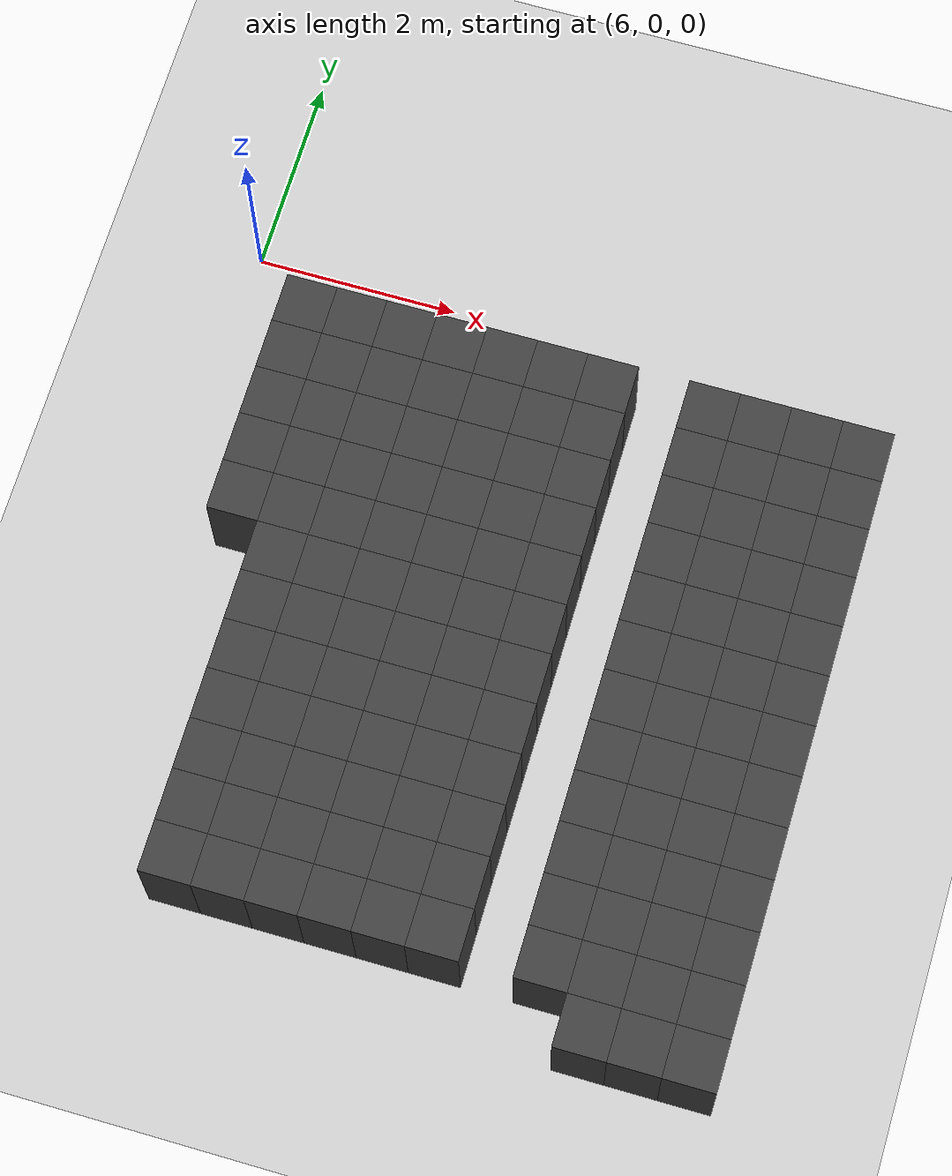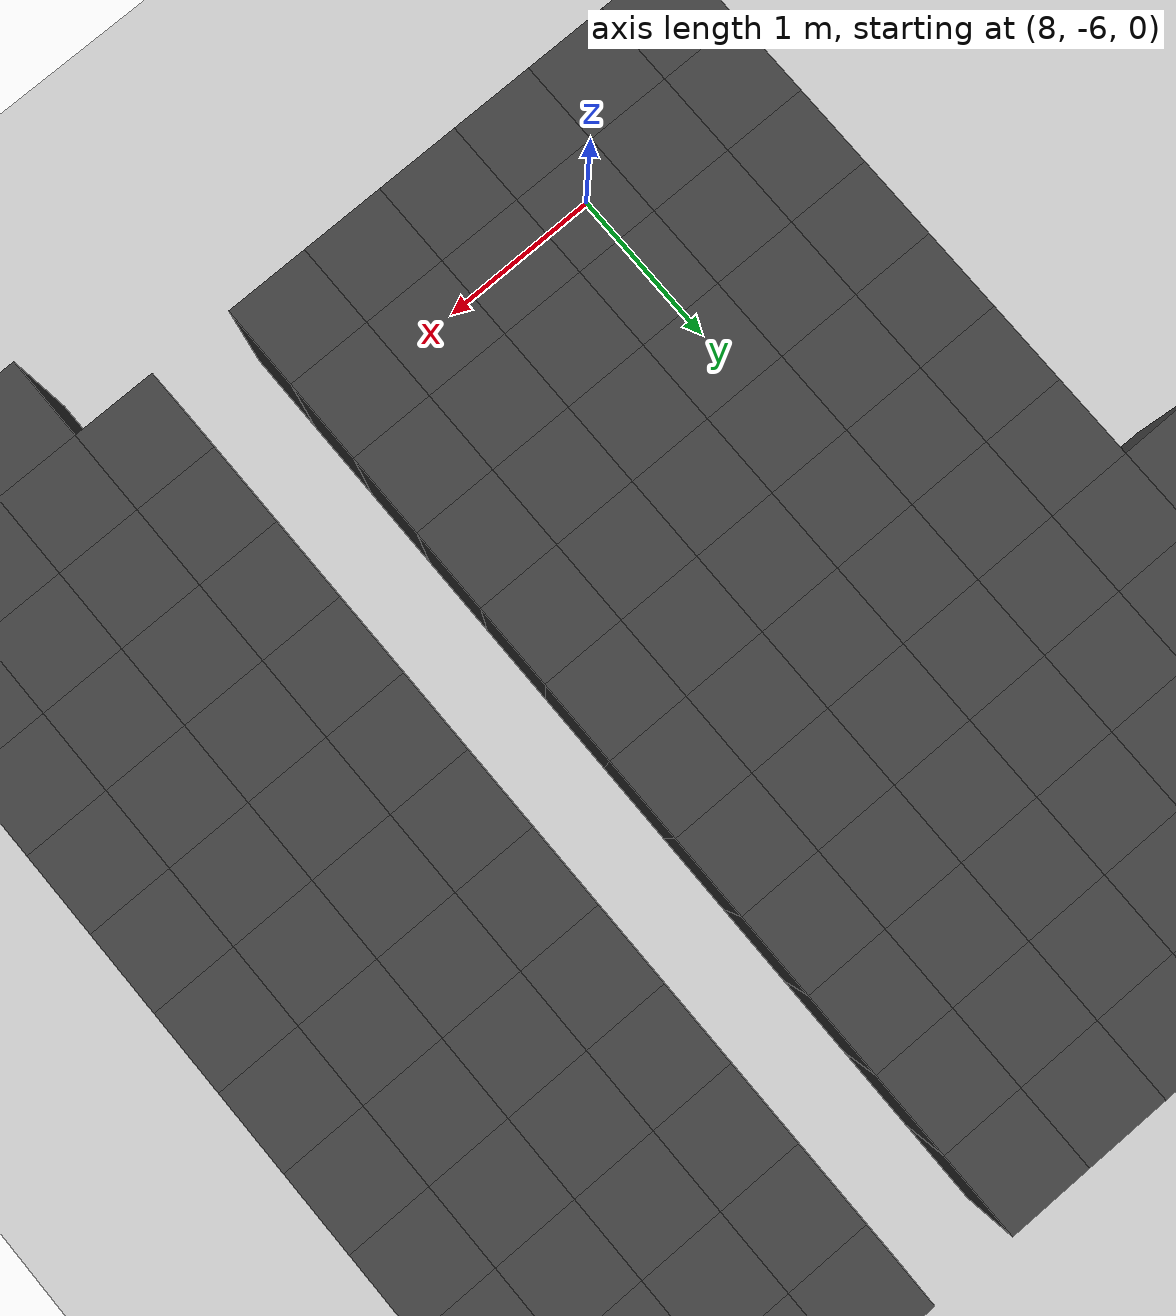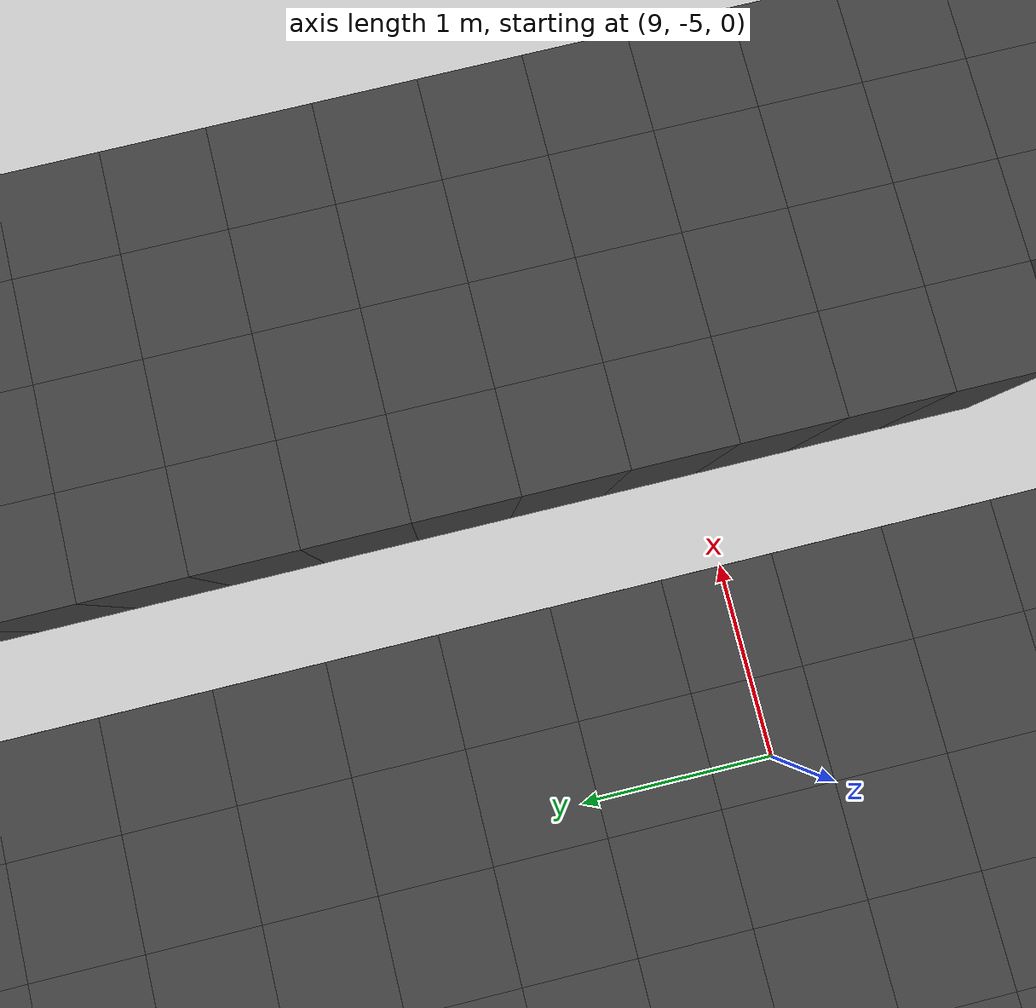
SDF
<sdf version="1.7">
 <world name="map_12356">
  <model name="ground_plane">
   <static>true</static>
   <link name="link">
    <collision name="collision">
     <geometry><plane><normal>0 0 1</normal><size>200 200</size></plane></geometry>
    </collision>
    <visual name="visual">
     <geometry><plane><normal>0 0 1</normal><size>200 200</size></plane></geometry>
     <material><ambient>0.8 0.8 0.8 1</ambient><diffuse>0.8 0.8 0.8 1</diffuse></material>
    </visual>
   </link>
  </model>
  <model name="maze_environment">
   <static>true</static>
   <link name="wall_1046">
    <pose>6.750 -0.750 0.500 0 0 0</pose>
    <collision name="col"><geometry><box><size>0.5 0.5 1.0</size></box></geometry></collision>
    <visual name="vis">
     <geometry><box><size>0.5 0.5 1.0</size></box></geometry>
     <material><ambient>0.15 0.15 0.15 1</ambient><diffuse>0.25 0.25 0.25 1</diffuse></material>
    </visual>
   </link>
   <link name="wall_1047">
    <pose>7.250 -0.750 0.500 0 0 0</pose>
    <collision name="col"><geometry><box><size>0.5 0.5 1.0</size></box></geometry></collision>
    <visual name="vis">
     <geometry><box><size>0.5 0.5 1.0</size></box></geometry>
     <material><ambient>0.15 0.15 0.15 1</ambient><diffuse>0.25 0.25 0.25 1</diffuse></material>
    </visual>
   </link>
   <link name="wall_1048">
    <pose>7.750 -0.750 0.500 0 0 0</pose>
    <collision name="col"><geometry><box><size>0.5 0.5 1.0</size></box></geometry></collision>
    <visual name="vis">
     <geometry><box><size>0.5 0.5 1.0</size></box></geometry>
     <material><ambient>0.15 0.15 0.15 1</ambient><diffuse>0.25 0.25 0.25 1</diffuse></material>
    </visual>
   </link>
   <link name="wall_1049">
    <pose>8.250 -0.750 0.500 0 0 0</pose>
    <collision name="col"><geometry><box><size>0.5 0.5 1.0</size></box></geometry></collision>
    <visual name="vis">
     <geometry><box><size>0.5 0.5 1.0</size></box></geometry>
     <material><ambient>0.15 0.15 0.15 1</ambient><diffuse>0.25 0.25 0.25 1</diffuse></material>
    </visual>
   </link>
   <link name="wall_1050">
    <pose>8.750 -0.750 0.500 0 0 0</pose>
    <collision name="col"><geometry><box><size>0.5 0.5 1.0</size></box></geometry></collision>
    <visual name="vis">
     <geometry><box><size>0.5 0.5 1.0</size></box></geometry>
     <material><ambient>0.15 0.15 0.15 1</ambient><diffuse>0.25 0.25 0.25 1</diffuse></material>
    </visual>
   </link>
   <link name="wall_1051">
    <pose>9.250 -0.750 0.500 0 0 0</pose>
    <collision name="col"><geometry><box><size>0.5 0.5 1.0</size></box></geometry></collision>
    <visual name="vis">
     <geometry><box><size>0.5 0.5 1.0</size></box></geometry>
     <material><ambient>0.15 0.15 0.15 1</ambient><diffuse>0.25 0.25 0.25 1</diffuse></material>
    </visual>
   </link>
   <link name="wall_1052">
    <pose>9.750 -0.750 0.500 0 0 0</pose>
    <collision name="col"><geometry><box><size>0.5 0.5 1.0</size></box></geometry></collision>
    <visual name="vis">
     <geometry><box><size>0.5 0.5 1.0</size></box></geometry>
     <material><ambient>0.15 0.15 0.15 1</ambient><diffuse>0.25 0.25 0.25 1</diffuse></material>
    </visual>
   </link>
   <link name="wall_1053">
    <pose>10.750 -0.750 0.500 0 0 0</pose>
    <collision name="col"><geometry><box><size>0.5 0.5 1.0</size></box></geometry></collision>
    <visual name="vis">
     <geometry><box><size>0.5 0.5 1.0</size></box></geometry>
     <material><ambient>0.15 0.15 0.15 1</ambient><diffuse>0.25 0.25 0.25 1</diffuse></material>
    </visual>
   </link>
   <link name="wall_1054">
    <pose>11.250 -0.750 0.500 0 0 0</pose>
    <collision name="col"><geometry><box><size>0.5 0.5 1.0</size></box></geometry></collision>
    <visual name="vis">
     <geometry><box><size>0.5 0.5 1.0</size></box></geometry>
     <material><ambient>0.15 0.15 0.15 1</ambient><diffuse>0.25 0.25 0.25 1</diffuse></material>
    </visual>
   </link>
   <link name="wall_1055">
    <pose>11.750 -0.750 0.500 0 0 0</pose>
    <collision name="col"><geometry><box><size>0.5 0.5 1.0</size></box></geometry></collision>
    <visual name="vis">
     <geometry><box><size>0.5 0.5 1.0</size></box></geometry>
     <material><ambient>0.15 0.15 0.15 1</ambient><diffuse>0.25 0.25 0.25 1</diffuse></material>
    </visual>
   </link>
   <link name="wall_1056">
    <pose>12.250 -0.750 0.500 0 0 0</pose>
    <collision name="col"><geometry><box><size>0.5 0.5 1.0</size></box></geometry></collision>
    <visual name="vis">
     <geometry><box><size>0.5 0.5 1.0</size></box></geometry>
     <material><ambient>0.15 0.15 0.15 1</ambient><diffuse>0.25 0.25 0.25 1</diffuse></material>
    </visual>
   </link>
   <link name="wall_1090">
    <pose>6.750 -1.250 0.500 0 0 0</pose>
    <collision name="col"><geometry><box><size>0.5 0.5 1.0</size></box></geometry></collision>
    <visual name="vis">
     <geometry><box><size>0.5 0.5 1.0</size></box></geometry>
     <material><ambient>0.15 0.15 0.15 1</ambient><diffuse>0.25 0.25 0.25 1</diffuse></material>
    </visual>
   </link>
   <link name="wall_1091">
    <pose>7.250 -1.250 0.500 0 0 0</pose>
    <collision name="col"><geometry><box><size>0.5 0.5 1.0</size></box></geometry></collision>
    <visual name="vis">
     <geometry><box><size>0.5 0.5 1.0</size></box></geometry>
     <material><ambient>0.15 0.15 0.15 1</ambient><diffuse>0.25 0.25 0.25 1</diffuse></material>
    </visual>
   </link>
   <link name="wall_1092">
    <pose>7.750 -1.250 0.500 0 0 0</pose>
    <collision name="col"><geometry><box><size>0.5 0.5 1.0</size></box></geometry></collision>
    <visual name="vis">
     <geometry><box><size>0.5 0.5 1.0</size></box></geometry>
     <material><ambient>0.15 0.15 0.15 1</ambient><diffuse>0.25 0.25 0.25 1</diffuse></material>
    </visual>
   </link>
   <link name="wall_1093">
    <pose>8.250 -1.250 0.500 0 0 0</pose>
    <collision name="col"><geometry><box><size>0.5 0.5 1.0</size></box></geometry></collision>
    <visual name="vis">
     <geometry><box><size>0.5 0.5 1.0</size></box></geometry>
     <material><ambient>0.15 0.15 0.15 1</ambient><diffuse>0.25 0.25 0.25 1</diffuse></material>
    </visual>
   </link>
   <link name="wall_1094">
    <pose>8.750 -1.250 0.500 0 0 0</pose>
    <collision name="col"><geometry><box><size>0.5 0.5 1.0</size></box></geometry></collision>
    <visual name="vis">
     <geometry><box><size>0.5 0.5 1.0</size></box></geometry>
     <material><ambient>0.15 0.15 0.15 1</ambient><diffuse>0.25 0.25 0.25 1</diffuse></material>
    </visual>
   </link>
   <link name="wall_1095">
    <pose>9.250 -1.250 0.500 0 0 0</pose>
    <collision name="col"><geometry><box><size>0.5 0.5 1.0</size></box></geometry></collision>
    <visual name="vis">
     <geometry><box><size>0.5 0.5 1.0</size></box></geometry>
     <material><ambient>0.15 0.15 0.15 1</ambient><diffuse>0.25 0.25 0.25 1</diffuse></material>
    </visual>
   </link>
   <link name="wall_1096">
    <pose>9.750 -1.250 0.500 0 0 0</pose>
    <collision name="col"><geometry><box><size>0.5 0.5 1.0</size></box></geometry></collision>
    <visual name="vis">
     <geometry><box><size>0.5 0.5 1.0</size></box></geometry>
     <material><ambient>0.15 0.15 0.15 1</ambient><diffuse>0.25 0.25 0.25 1</diffuse></material>
    </visual>
   </link>
   <link name="wall_1097">
    <pose>10.750 -1.250 0.500 0 0 0</pose>
    <collision name="col"><geometry><box><size>0.5 0.5 1.0</size></box></geometry></collision>
    <visual name="vis">
     <geometry><box><size>0.5 0.5 1.0</size></box></geometry>
     <material><ambient>0.15 0.15 0.15 1</ambient><diffuse>0.25 0.25 0.25 1</diffuse></material>
    </visual>
   </link>
   <link name="wall_1098">
    <pose>11.250 -1.250 0.500 0 0 0</pose>
    <collision name="col"><geometry><box><size>0.5 0.5 1.0</size></box></geometry></collision>
    <visual name="vis">
     <geometry><box><size>0.5 0.5 1.0</size></box></geometry>
     <material><ambient>0.15 0.15 0.15 1</ambient><diffuse>0.25 0.25 0.25 1</diffuse></material>
    </visual>
   </link>
   <link name="wall_1099">
    <pose>11.750 -1.250 0.500 0 0 0</pose>
    <collision name="col"><geometry><box><size>0.5 0.5 1.0</size></box></geometry></collision>
    <visual name="vis">
     <geometry><box><size>0.5 0.5 1.0</size></box></geometry>
     <material><ambient>0.15 0.15 0.15 1</ambient><diffuse>0.25 0.25 0.25 1</diffuse></material>
    </visual>
   </link>
   <link name="wall_1100">
    <pose>12.250 -1.250 0.500 0 0 0</pose>
    <collision name="col"><geometry><box><size>0.5 0.5 1.0</size></box></geometry></collision>
    <visual name="vis">
     <geometry><box><size>0.5 0.5 1.0</size></box></geometry>
     <material><ambient>0.15 0.15 0.15 1</ambient><diffuse>0.25 0.25 0.25 1</diffuse></material>
    </visual>
   </link>
   <link name="wall_1132">
    <pose>6.750 -1.750 0.500 0 0 0</pose>
    <collision name="col"><geometry><box><size>0.5 0.5 1.0</size></box></geometry></collision>
    <visual name="vis">
     <geometry><box><size>0.5 0.5 1.0</size></box></geometry>
     <material><ambient>0.15 0.15 0.15 1</ambient><diffuse>0.25 0.25 0.25 1</diffuse></material>
    </visual>
   </link>
   <link name="wall_1133">
    <pose>7.250 -1.750 0.500 0 0 0</pose>
    <collision name="col"><geometry><box><size>0.5 0.5 1.0</size></box></geometry></collision>
    <visual name="vis">
     <geometry><box><size>0.5 0.5 1.0</size></box></geometry>
     <material><ambient>0.15 0.15 0.15 1</ambient><diffuse>0.25 0.25 0.25 1</diffuse></material>
    </visual>
   </link>
   <link name="wall_1134">
    <pose>7.750 -1.750 0.500 0 0 0</pose>
    <collision name="col"><geometry><box><size>0.5 0.5 1.0</size></box></geometry></collision>
    <visual name="vis">
     <geometry><box><size>0.5 0.5 1.0</size></box></geometry>
     <material><ambient>0.15 0.15 0.15 1</ambient><diffuse>0.25 0.25 0.25 1</diffuse></material>
    </visual>
   </link>
   <link name="wall_1135">
    <pose>8.250 -1.750 0.500 0 0 0</pose>
    <collision name="col"><geometry><box><size>0.5 0.5 1.0</size></box></geometry></collision>
    <visual name="vis">
     <geometry><box><size>0.5 0.5 1.0</size></box></geometry>
     <material><ambient>0.15 0.15 0.15 1</ambient><diffuse>0.25 0.25 0.25 1</diffuse></material>
    </visual>
   </link>
   <link name="wall_1136">
    <pose>8.750 -1.750 0.500 0 0 0</pose>
    <collision name="col"><geometry><box><size>0.5 0.5 1.0</size></box></geometry></collision>
    <visual name="vis">
     <geometry><box><size>0.5 0.5 1.0</size></box></geometry>
     <material><ambient>0.15 0.15 0.15 1</ambient><diffuse>0.25 0.25 0.25 1</diffuse></material>
    </visual>
   </link>
   <link name="wall_1137">
    <pose>9.250 -1.750 0.500 0 0 0</pose>
    <collision name="col"><geometry><box><size>0.5 0.5 1.0</size></box></geometry></collision>
    <visual name="vis">
     <geometry><box><size>0.5 0.5 1.0</size></box></geometry>
     <material><ambient>0.15 0.15 0.15 1</ambient><diffuse>0.25 0.25 0.25 1</diffuse></material>
    </visual>
   </link>
   <link name="wall_1138">
    <pose>9.750 -1.750 0.500 0 0 0</pose>
    <collision name="col"><geometry><box><size>0.5 0.5 1.0</size></box></geometry></collision>
    <visual name="vis">
     <geometry><box><size>0.5 0.5 1.0</size></box></geometry>
     <material><ambient>0.15 0.15 0.15 1</ambient><diffuse>0.25 0.25 0.25 1</diffuse></material>
    </visual>
   </link>
   <link name="wall_1139">
    <pose>10.750 -1.750 0.500 0 0 0</pose>
    <collision name="col"><geometry><box><size>0.5 0.5 1.0</size></box></geometry></collision>
    <visual name="vis">
     <geometry><box><size>0.5 0.5 1.0</size></box></geometry>
     <material><ambient>0.15 0.15 0.15 1</ambient><diffuse>0.25 0.25 0.25 1</diffuse></material>
    </visual>
   </link>
   <link name="wall_1140">
    <pose>11.250 -1.750 0.500 0 0 0</pose>
    <collision name="col"><geometry><box><size>0.5 0.5 1.0</size></box></geometry></collision>
    <visual name="vis">
     <geometry><box><size>0.5 0.5 1.0</size></box></geometry>
     <material><ambient>0.15 0.15 0.15 1</ambient><diffuse>0.25 0.25 0.25 1</diffuse></material>
    </visual>
   </link>
   <link name="wall_1141">
    <pose>11.750 -1.750 0.500 0 0 0</pose>
    <collision name="col"><geometry><box><size>0.5 0.5 1.0</size></box></geometry></collision>
    <visual name="vis">
     <geometry><box><size>0.5 0.5 1.0</size></box></geometry>
     <material><ambient>0.15 0.15 0.15 1</ambient><diffuse>0.25 0.25 0.25 1</diffuse></material>
    </visual>
   </link>
   <link name="wall_1142">
    <pose>12.250 -1.750 0.500 0 0 0</pose>
    <collision name="col"><geometry><box><size>0.5 0.5 1.0</size></box></geometry></collision>
    <visual name="vis">
     <geometry><box><size>0.5 0.5 1.0</size></box></geometry>
     <material><ambient>0.15 0.15 0.15 1</ambient><diffuse>0.25 0.25 0.25 1</diffuse></material>
    </visual>
   </link>
   <link name="wall_1170">
    <pose>6.750 -2.250 0.500 0 0 0</pose>
    <collision name="col"><geometry><box><size>0.5 0.5 1.0</size></box></geometry></collision>
    <visual name="vis">
     <geometry><box><size>0.5 0.5 1.0</size></box></geometry>
     <material><ambient>0.15 0.15 0.15 1</ambient><diffuse>0.25 0.25 0.25 1</diffuse></material>
    </visual>
   </link>
   <link name="wall_1171">
    <pose>7.250 -2.250 0.500 0 0 0</pose>
    <collision name="col"><geometry><box><size>0.5 0.5 1.0</size></box></geometry></collision>
    <visual name="vis">
     <geometry><box><size>0.5 0.5 1.0</size></box></geometry>
     <material><ambient>0.15 0.15 0.15 1</ambient><diffuse>0.25 0.25 0.25 1</diffuse></material>
    </visual>
   </link>
   <link name="wall_1172">
    <pose>7.750 -2.250 0.500 0 0 0</pose>
    <collision name="col"><geometry><box><size>0.5 0.5 1.0</size></box></geometry></collision>
    <visual name="vis">
     <geometry><box><size>0.5 0.5 1.0</size></box></geometry>
     <material><ambient>0.15 0.15 0.15 1</ambient><diffuse>0.25 0.25 0.25 1</diffuse></material>
    </visual>
   </link>
   <link name="wall_1173">
    <pose>8.250 -2.250 0.500 0 0 0</pose>
    <collision name="col"><geometry><box><size>0.5 0.5 1.0</size></box></geometry></collision>
    <visual name="vis">
     <geometry><box><size>0.5 0.5 1.0</size></box></geometry>
     <material><ambient>0.15 0.15 0.15 1</ambient><diffuse>0.25 0.25 0.25 1</diffuse></material>
    </visual>
   </link>
   <link name="wall_1174">
    <pose>8.750 -2.250 0.500 0 0 0</pose>
    <collision name="col"><geometry><box><size>0.5 0.5 1.0</size></box></geometry></collision>
    <visual name="vis">
     <geometry><box><size>0.5 0.5 1.0</size></box></geometry>
     <material><ambient>0.15 0.15 0.15 1</ambient><diffuse>0.25 0.25 0.25 1</diffuse></material>
    </visual>
   </link>
   <link name="wall_1175">
    <pose>9.250 -2.250 0.500 0 0 0</pose>
    <collision name="col"><geometry><box><size>0.5 0.5 1.0</size></box></geometry></collision>
    <visual name="vis">
     <geometry><box><size>0.5 0.5 1.0</size></box></geometry>
     <material><ambient>0.15 0.15 0.15 1</ambient><diffuse>0.25 0.25 0.25 1</diffuse></material>
    </visual>
   </link>
   <link name="wall_1176">
    <pose>9.750 -2.250 0.500 0 0 0</pose>
    <collision name="col"><geometry><box><size>0.5 0.5 1.0</size></box></geometry></collision>
    <visual name="vis">
     <geometry><box><size>0.5 0.5 1.0</size></box></geometry>
     <material><ambient>0.15 0.15 0.15 1</ambient><diffuse>0.25 0.25 0.25 1</diffuse></material>
    </visual>
   </link>
   <link name="wall_1177">
    <pose>10.750 -2.250 0.500 0 0 0</pose>
    <collision name="col"><geometry><box><size>0.5 0.5 1.0</size></box></geometry></collision>
    <visual name="vis">
     <geometry><box><size>0.5 0.5 1.0</size></box></geometry>
     <material><ambient>0.15 0.15 0.15 1</ambient><diffuse>0.25 0.25 0.25 1</diffuse></material>
    </visual>
   </link>
   <link name="wall_1178">
    <pose>11.250 -2.250 0.500 0 0 0</pose>
    <collision name="col"><geometry><box><size>0.5 0.5 1.0</size></box></geometry></collision>
    <visual name="vis">
     <geometry><box><size>0.5 0.5 1.0</size></box></geometry>
     <material><ambient>0.15 0.15 0.15 1</ambient><diffuse>0.25 0.25 0.25 1</diffuse></material>
    </visual>
   </link>
   <link name="wall_1179">
    <pose>11.750 -2.250 0.500 0 0 0</pose>
    <collision name="col"><geometry><box><size>0.5 0.5 1.0</size></box></geometry></collision>
    <visual name="vis">
     <geometry><box><size>0.5 0.5 1.0</size></box></geometry>
     <material><ambient>0.15 0.15 0.15 1</ambient><diffuse>0.25 0.25 0.25 1</diffuse></material>
    </visual>
   </link>
   <link name="wall_1180">
    <pose>12.250 -2.250 0.500 0 0 0</pose>
    <collision name="col"><geometry><box><size>0.5 0.5 1.0</size></box></geometry></collision>
    <visual name="vis">
     <geometry><box><size>0.5 0.5 1.0</size></box></geometry>
     <material><ambient>0.15 0.15 0.15 1</ambient><diffuse>0.25 0.25 0.25 1</diffuse></material>
    </visual>
   </link>
   <link name="wall_1211">
    <pose>6.750 -2.750 0.500 0 0 0</pose>
    <collision name="col"><geometry><box><size>0.5 0.5 1.0</size></box></geometry></collision>
    <visual name="vis">
     <geometry><box><size>0.5 0.5 1.0</size></box></geometry>
     <material><ambient>0.15 0.15 0.15 1</ambient><diffuse>0.25 0.25 0.25 1</diffuse></material>
    </visual>
   </link>
   <link name="wall_1212">
    <pose>7.250 -2.750 0.500 0 0 0</pose>
    <collision name="col"><geometry><box><size>0.5 0.5 1.0</size></box></geometry></collision>
    <visual name="vis">
     <geometry><box><size>0.5 0.5 1.0</size></box></geometry>
     <material><ambient>0.15 0.15 0.15 1</ambient><diffuse>0.25 0.25 0.25 1</diffuse></material>
    </visual>
   </link>
   <link name="wall_1213">
    <pose>7.750 -2.750 0.500 0 0 0</pose>
    <collision name="col"><geometry><box><size>0.5 0.5 1.0</size></box></geometry></collision>
    <visual name="vis">
     <geometry><box><size>0.5 0.5 1.0</size></box></geometry>
     <material><ambient>0.15 0.15 0.15 1</ambient><diffuse>0.25 0.25 0.25 1</diffuse></material>
    </visual>
   </link>
   <link name="wall_1214">
    <pose>8.250 -2.750 0.500 0 0 0</pose>
    <collision name="col"><geometry><box><size>0.5 0.5 1.0</size></box></geometry></collision>
    <visual name="vis">
     <geometry><box><size>0.5 0.5 1.0</size></box></geometry>
     <material><ambient>0.15 0.15 0.15 1</ambient><diffuse>0.25 0.25 0.25 1</diffuse></material>
    </visual>
   </link>
   <link name="wall_1215">
    <pose>8.750 -2.750 0.500 0 0 0</pose>
    <collision name="col"><geometry><box><size>0.5 0.5 1.0</size></box></geometry></collision>
    <visual name="vis">
     <geometry><box><size>0.5 0.5 1.0</size></box></geometry>
     <material><ambient>0.15 0.15 0.15 1</ambient><diffuse>0.25 0.25 0.25 1</diffuse></material>
    </visual>
   </link>
   <link name="wall_1216">
    <pose>9.250 -2.750 0.500 0 0 0</pose>
    <collision name="col"><geometry><box><size>0.5 0.5 1.0</size></box></geometry></collision>
    <visual name="vis">
     <geometry><box><size>0.5 0.5 1.0</size></box></geometry>
     <material><ambient>0.15 0.15 0.15 1</ambient><diffuse>0.25 0.25 0.25 1</diffuse></material>
    </visual>
   </link>
   <link name="wall_1217">
    <pose>9.750 -2.750 0.500 0 0 0</pose>
    <collision name="col"><geometry><box><size>0.5 0.5 1.0</size></box></geometry></collision>
    <visual name="vis">
     <geometry><box><size>0.5 0.5 1.0</size></box></geometry>
     <material><ambient>0.15 0.15 0.15 1</ambient><diffuse>0.25 0.25 0.25 1</diffuse></material>
    </visual>
   </link>
   <link name="wall_1218">
    <pose>10.750 -2.750 0.500 0 0 0</pose>
    <collision name="col"><geometry><box><size>0.5 0.5 1.0</size></box></geometry></collision>
    <visual name="vis">
     <geometry><box><size>0.5 0.5 1.0</size></box></geometry>
     <material><ambient>0.15 0.15 0.15 1</ambient><diffuse>0.25 0.25 0.25 1</diffuse></material>
    </visual>
   </link>
   <link name="wall_1219">
    <pose>11.250 -2.750 0.500 0 0 0</pose>
    <collision name="col"><geometry><box><size>0.5 0.5 1.0</size></box></geometry></collision>
    <visual name="vis">
     <geometry><box><size>0.5 0.5 1.0</size></box></geometry>
     <material><ambient>0.15 0.15 0.15 1</ambient><diffuse>0.25 0.25 0.25 1</diffuse></material>
    </visual>
   </link>
   <link name="wall_1220">
    <pose>11.750 -2.750 0.500 0 0 0</pose>
    <collision name="col"><geometry><box><size>0.5 0.5 1.0</size></box></geometry></collision>
    <visual name="vis">
     <geometry><box><size>0.5 0.5 1.0</size></box></geometry>
     <material><ambient>0.15 0.15 0.15 1</ambient><diffuse>0.25 0.25 0.25 1</diffuse></material>
    </visual>
   </link>
   <link name="wall_1221">
    <pose>12.250 -2.750 0.500 0 0 0</pose>
    <collision name="col"><geometry><box><size>0.5 0.5 1.0</size></box></geometry></collision>
    <visual name="vis">
     <geometry><box><size>0.5 0.5 1.0</size></box></geometry>
     <material><ambient>0.15 0.15 0.15 1</ambient><diffuse>0.25 0.25 0.25 1</diffuse></material>
    </visual>
   </link>
   <link name="wall_1253">
    <pose>7.250 -3.250 0.500 0 0 0</pose>
    <collision name="col"><geometry><box><size>0.5 0.5 1.0</size></box></geometry></collision>
    <visual name="vis">
     <geometry><box><size>0.5 0.5 1.0</size></box></geometry>
     <material><ambient>0.15 0.15 0.15 1</ambient><diffuse>0.25 0.25 0.25 1</diffuse></material>
    </visual>
   </link>
   <link name="wall_1254">
    <pose>7.750 -3.250 0.500 0 0 0</pose>
    <collision name="col"><geometry><box><size>0.5 0.5 1.0</size></box></geometry></collision>
    <visual name="vis">
     <geometry><box><size>0.5 0.5 1.0</size></box></geometry>
     <material><ambient>0.15 0.15 0.15 1</ambient><diffuse>0.25 0.25 0.25 1</diffuse></material>
    </visual>
   </link>
   <link name="wall_1255">
    <pose>8.250 -3.250 0.500 0 0 0</pose>
    <collision name="col"><geometry><box><size>0.5 0.5 1.0</size></box></geometry></collision>
    <visual name="vis">
     <geometry><box><size>0.5 0.5 1.0</size></box></geometry>
     <material><ambient>0.15 0.15 0.15 1</ambient><diffuse>0.25 0.25 0.25 1</diffuse></material>
    </visual>
   </link>
   <link name="wall_1256">
    <pose>8.750 -3.250 0.500 0 0 0</pose>
    <collision name="col"><geometry><box><size>0.5 0.5 1.0</size></box></geometry></collision>
    <visual name="vis">
     <geometry><box><size>0.5 0.5 1.0</size></box></geometry>
     <material><ambient>0.15 0.15 0.15 1</ambient><diffuse>0.25 0.25 0.25 1</diffuse></material>
    </visual>
   </link>
   <link name="wall_1257">
    <pose>9.250 -3.250 0.500 0 0 0</pose>
    <collision name="col"><geometry><box><size>0.5 0.5 1.0</size></box></geometry></collision>
    <visual name="vis">
     <geometry><box><size>0.5 0.5 1.0</size></box></geometry>
     <material><ambient>0.15 0.15 0.15 1</ambient><diffuse>0.25 0.25 0.25 1</diffuse></material>
    </visual>
   </link>
   <link name="wall_1258">
    <pose>9.750 -3.250 0.500 0 0 0</pose>
    <collision name="col"><geometry><box><size>0.5 0.5 1.0</size></box></geometry></collision>
    <visual name="vis">
     <geometry><box><size>0.5 0.5 1.0</size></box></geometry>
     <material><ambient>0.15 0.15 0.15 1</ambient><diffuse>0.25 0.25 0.25 1</diffuse></material>
    </visual>
   </link>
   <link name="wall_1259">
    <pose>10.750 -3.250 0.500 0 0 0</pose>
    <collision name="col"><geometry><box><size>0.5 0.5 1.0</size></box></geometry></collision>
    <visual name="vis">
     <geometry><box><size>0.5 0.5 1.0</size></box></geometry>
     <material><ambient>0.15 0.15 0.15 1</ambient><diffuse>0.25 0.25 0.25 1</diffuse></material>
    </visual>
   </link>
   <link name="wall_1260">
    <pose>11.250 -3.250 0.500 0 0 0</pose>
    <collision name="col"><geometry><box><size>0.5 0.5 1.0</size></box></geometry></collision>
    <visual name="vis">
     <geometry><box><size>0.5 0.5 1.0</size></box></geometry>
     <material><ambient>0.15 0.15 0.15 1</ambient><diffuse>0.25 0.25 0.25 1</diffuse></material>
    </visual>
   </link>
   <link name="wall_1261">
    <pose>11.750 -3.250 0.500 0 0 0</pose>
    <collision name="col"><geometry><box><size>0.5 0.5 1.0</size></box></geometry></collision>
    <visual name="vis">
     <geometry><box><size>0.5 0.5 1.0</size></box></geometry>
     <material><ambient>0.15 0.15 0.15 1</ambient><diffuse>0.25 0.25 0.25 1</diffuse></material>
    </visual>
   </link>
   <link name="wall_1262">
    <pose>12.250 -3.250 0.500 0 0 0</pose>
    <collision name="col"><geometry><box><size>0.5 0.5 1.0</size></box></geometry></collision>
    <visual name="vis">
     <geometry><box><size>0.5 0.5 1.0</size></box></geometry>
     <material><ambient>0.15 0.15 0.15 1</ambient><diffuse>0.25 0.25 0.25 1</diffuse></material>
    </visual>
   </link>
   <link name="wall_1289">
    <pose>7.250 -3.750 0.500 0 0 0</pose>
    <collision name="col"><geometry><box><size>0.5 0.5 1.0</size></box></geometry></collision>
    <visual name="vis">
     <geometry><box><size>0.5 0.5 1.0</size></box></geometry>
     <material><ambient>0.15 0.15 0.15 1</ambient><diffuse>0.25 0.25 0.25 1</diffuse></material>
    </visual>
   </link>
   <link name="wall_1290">
    <pose>7.750 -3.750 0.500 0 0 0</pose>
    <collision name="col"><geometry><box><size>0.5 0.5 1.0</size></box></geometry></collision>
    <visual name="vis">
     <geometry><box><size>0.5 0.5 1.0</size></box></geometry>
     <material><ambient>0.15 0.15 0.15 1</ambient><diffuse>0.25 0.25 0.25 1</diffuse></material>
    </visual>
   </link>
   <link name="wall_1291">
    <pose>8.250 -3.750 0.500 0 0 0</pose>
    <collision name="col"><geometry><box><size>0.5 0.5 1.0</size></box></geometry></collision>
    <visual name="vis">
     <geometry><box><size>0.5 0.5 1.0</size></box></geometry>
     <material><ambient>0.15 0.15 0.15 1</ambient><diffuse>0.25 0.25 0.25 1</diffuse></material>
    </visual>
   </link>
   <link name="wall_1292">
    <pose>8.750 -3.750 0.500 0 0 0</pose>
    <collision name="col"><geometry><box><size>0.5 0.5 1.0</size></box></geometry></collision>
    <visual name="vis">
     <geometry><box><size>0.5 0.5 1.0</size></box></geometry>
     <material><ambient>0.15 0.15 0.15 1</ambient><diffuse>0.25 0.25 0.25 1</diffuse></material>
    </visual>
   </link>
   <link name="wall_1293">
    <pose>9.250 -3.750 0.500 0 0 0</pose>
    <collision name="col"><geometry><box><size>0.5 0.5 1.0</size></box></geometry></collision>
    <visual name="vis">
     <geometry><box><size>0.5 0.5 1.0</size></box></geometry>
     <material><ambient>0.15 0.15 0.15 1</ambient><diffuse>0.25 0.25 0.25 1</diffuse></material>
    </visual>
   </link>
   <link name="wall_1294">
    <pose>9.750 -3.750 0.500 0 0 0</pose>
    <collision name="col"><geometry><box><size>0.5 0.5 1.0</size></box></geometry></collision>
    <visual name="vis">
     <geometry><box><size>0.5 0.5 1.0</size></box></geometry>
     <material><ambient>0.15 0.15 0.15 1</ambient><diffuse>0.25 0.25 0.25 1</diffuse></material>
    </visual>
   </link>
   <link name="wall_1295">
    <pose>10.750 -3.750 0.500 0 0 0</pose>
    <collision name="col"><geometry><box><size>0.5 0.5 1.0</size></box></geometry></collision>
    <visual name="vis">
     <geometry><box><size>0.5 0.5 1.0</size></box></geometry>
     <material><ambient>0.15 0.15 0.15 1</ambient><diffuse>0.25 0.25 0.25 1</diffuse></material>
    </visual>
   </link>
   <link name="wall_1296">
    <pose>11.250 -3.750 0.500 0 0 0</pose>
    <collision name="col"><geometry><box><size>0.5 0.5 1.0</size></box></geometry></collision>
    <visual name="vis">
     <geometry><box><size>0.5 0.5 1.0</size></box></geometry>
     <material><ambient>0.15 0.15 0.15 1</ambient><diffuse>0.25 0.25 0.25 1</diffuse></material>
    </visual>
   </link>
   <link name="wall_1297">
    <pose>11.750 -3.750 0.500 0 0 0</pose>
    <collision name="col"><geometry><box><size>0.5 0.5 1.0</size></box></geometry></collision>
    <visual name="vis">
     <geometry><box><size>0.5 0.5 1.0</size></box></geometry>
     <material><ambient>0.15 0.15 0.15 1</ambient><diffuse>0.25 0.25 0.25 1</diffuse></material>
    </visual>
   </link>
   <link name="wall_1298">
    <pose>12.250 -3.750 0.500 0 0 0</pose>
    <collision name="col"><geometry><box><size>0.5 0.5 1.0</size></box></geometry></collision>
    <visual name="vis">
     <geometry><box><size>0.5 0.5 1.0</size></box></geometry>
     <material><ambient>0.15 0.15 0.15 1</ambient><diffuse>0.25 0.25 0.25 1</diffuse></material>
    </visual>
   </link>
   <link name="wall_1329">
    <pose>7.250 -4.250 0.500 0 0 0</pose>
    <collision name="col"><geometry><box><size>0.5 0.5 1.0</size></box></geometry></collision>
    <visual name="vis">
     <geometry><box><size>0.5 0.5 1.0</size></box></geometry>
     <material><ambient>0.15 0.15 0.15 1</ambient><diffuse>0.25 0.25 0.25 1</diffuse></material>
    </visual>
   </link>
   <link name="wall_1330">
    <pose>7.750 -4.250 0.500 0 0 0</pose>
    <collision name="col"><geometry><box><size>0.5 0.5 1.0</size></box></geometry></collision>
    <visual name="vis">
     <geometry><box><size>0.5 0.5 1.0</size></box></geometry>
     <material><ambient>0.15 0.15 0.15 1</ambient><diffuse>0.25 0.25 0.25 1</diffuse></material>
    </visual>
   </link>
   <link name="wall_1331">
    <pose>8.250 -4.250 0.500 0 0 0</pose>
    <collision name="col"><geometry><box><size>0.5 0.5 1.0</size></box></geometry></collision>
    <visual name="vis">
     <geometry><box><size>0.5 0.5 1.0</size></box></geometry>
     <material><ambient>0.15 0.15 0.15 1</ambient><diffuse>0.25 0.25 0.25 1</diffuse></material>
    </visual>
   </link>
   <link name="wall_1332">
    <pose>8.750 -4.250 0.500 0 0 0</pose>
    <collision name="col"><geometry><box><size>0.5 0.5 1.0</size></box></geometry></collision>
    <visual name="vis">
     <geometry><box><size>0.5 0.5 1.0</size></box></geometry>
     <material><ambient>0.15 0.15 0.15 1</ambient><diffuse>0.25 0.25 0.25 1</diffuse></material>
    </visual>
   </link>
   <link name="wall_1333">
    <pose>9.250 -4.250 0.500 0 0 0</pose>
    <collision name="col"><geometry><box><size>0.5 0.5 1.0</size></box></geometry></collision>
    <visual name="vis">
     <geometry><box><size>0.5 0.5 1.0</size></box></geometry>
     <material><ambient>0.15 0.15 0.15 1</ambient><diffuse>0.25 0.25 0.25 1</diffuse></material>
    </visual>
   </link>
   <link name="wall_1334">
    <pose>9.750 -4.250 0.500 0 0 0</pose>
    <collision name="col"><geometry><box><size>0.5 0.5 1.0</size></box></geometry></collision>
    <visual name="vis">
     <geometry><box><size>0.5 0.5 1.0</size></box></geometry>
     <material><ambient>0.15 0.15 0.15 1</ambient><diffuse>0.25 0.25 0.25 1</diffuse></material>
    </visual>
   </link>
   <link name="wall_1335">
    <pose>10.750 -4.250 0.500 0 0 0</pose>
    <collision name="col"><geometry><box><size>0.5 0.5 1.0</size></box></geometry></collision>
    <visual name="vis">
     <geometry><box><size>0.5 0.5 1.0</size></box></geometry>
     <material><ambient>0.15 0.15 0.15 1</ambient><diffuse>0.25 0.25 0.25 1</diffuse></material>
    </visual>
   </link>
   <link name="wall_1336">
    <pose>11.250 -4.250 0.500 0 0 0</pose>
    <collision name="col"><geometry><box><size>0.5 0.5 1.0</size></box></geometry></collision>
    <visual name="vis">
     <geometry><box><size>0.5 0.5 1.0</size></box></geometry>
     <material><ambient>0.15 0.15 0.15 1</ambient><diffuse>0.25 0.25 0.25 1</diffuse></material>
    </visual>
   </link>
   <link name="wall_1337">
    <pose>11.750 -4.250 0.500 0 0 0</pose>
    <collision name="col"><geometry><box><size>0.5 0.5 1.0</size></box></geometry></collision>
    <visual name="vis">
     <geometry><box><size>0.5 0.5 1.0</size></box></geometry>
     <material><ambient>0.15 0.15 0.15 1</ambient><diffuse>0.25 0.25 0.25 1</diffuse></material>
    </visual>
   </link>
   <link name="wall_1338">
    <pose>12.250 -4.250 0.500 0 0 0</pose>
    <collision name="col"><geometry><box><size>0.5 0.5 1.0</size></box></geometry></collision>
    <visual name="vis">
     <geometry><box><size>0.5 0.5 1.0</size></box></geometry>
     <material><ambient>0.15 0.15 0.15 1</ambient><diffuse>0.25 0.25 0.25 1</diffuse></material>
    </visual>
   </link>
   <link name="wall_1362">
    <pose>7.250 -4.750 0.500 0 0 0</pose>
    <collision name="col"><geometry><box><size>0.5 0.5 1.0</size></box></geometry></collision>
    <visual name="vis">
     <geometry><box><size>0.5 0.5 1.0</size></box></geometry>
     <material><ambient>0.15 0.15 0.15 1</ambient><diffuse>0.25 0.25 0.25 1</diffuse></material>
    </visual>
   </link>
   <link name="wall_1363">
    <pose>7.750 -4.750 0.500 0 0 0</pose>
    <collision name="col"><geometry><box><size>0.5 0.5 1.0</size></box></geometry></collision>
    <visual name="vis">
     <geometry><box><size>0.5 0.5 1.0</size></box></geometry>
     <material><ambient>0.15 0.15 0.15 1</ambient><diffuse>0.25 0.25 0.25 1</diffuse></material>
    </visual>
   </link>
   <link name="wall_1364">
    <pose>8.250 -4.750 0.500 0 0 0</pose>
    <collision name="col"><geometry><box><size>0.5 0.5 1.0</size></box></geometry></collision>
    <visual name="vis">
     <geometry><box><size>0.5 0.5 1.0</size></box></geometry>
     <material><ambient>0.15 0.15 0.15 1</ambient><diffuse>0.25 0.25 0.25 1</diffuse></material>
    </visual>
   </link>
   <link name="wall_1365">
    <pose>8.750 -4.750 0.500 0 0 0</pose>
    <collision name="col"><geometry><box><size>0.5 0.5 1.0</size></box></geometry></collision>
    <visual name="vis">
     <geometry><box><size>0.5 0.5 1.0</size></box></geometry>
     <material><ambient>0.15 0.15 0.15 1</ambient><diffuse>0.25 0.25 0.25 1</diffuse></material>
    </visual>
   </link>
   <link name="wall_1366">
    <pose>9.250 -4.750 0.500 0 0 0</pose>
    <collision name="col"><geometry><box><size>0.5 0.5 1.0</size></box></geometry></collision>
    <visual name="vis">
     <geometry><box><size>0.5 0.5 1.0</size></box></geometry>
     <material><ambient>0.15 0.15 0.15 1</ambient><diffuse>0.25 0.25 0.25 1</diffuse></material>
    </visual>
   </link>
   <link name="wall_1367">
    <pose>9.750 -4.750 0.500 0 0 0</pose>
    <collision name="col"><geometry><box><size>0.5 0.5 1.0</size></box></geometry></collision>
    <visual name="vis">
     <geometry><box><size>0.5 0.5 1.0</size></box></geometry>
     <material><ambient>0.15 0.15 0.15 1</ambient><diffuse>0.25 0.25 0.25 1</diffuse></material>
    </visual>
   </link>
   <link name="wall_1368">
    <pose>10.750 -4.750 0.500 0 0 0</pose>
    <collision name="col"><geometry><box><size>0.5 0.5 1.0</size></box></geometry></collision>
    <visual name="vis">
     <geometry><box><size>0.5 0.5 1.0</size></box></geometry>
     <material><ambient>0.15 0.15 0.15 1</ambient><diffuse>0.25 0.25 0.25 1</diffuse></material>
    </visual>
   </link>
   <link name="wall_1369">
    <pose>11.250 -4.750 0.500 0 0 0</pose>
    <collision name="col"><geometry><box><size>0.5 0.5 1.0</size></box></geometry></collision>
    <visual name="vis">
     <geometry><box><size>0.5 0.5 1.0</size></box></geometry>
     <material><ambient>0.15 0.15 0.15 1</ambient><diffuse>0.25 0.25 0.25 1</diffuse></material>
    </visual>
   </link>
   <link name="wall_1370">
    <pose>11.750 -4.750 0.500 0 0 0</pose>
    <collision name="col"><geometry><box><size>0.5 0.5 1.0</size></box></geometry></collision>
    <visual name="vis">
     <geometry><box><size>0.5 0.5 1.0</size></box></geometry>
     <material><ambient>0.15 0.15 0.15 1</ambient><diffuse>0.25 0.25 0.25 1</diffuse></material>
    </visual>
   </link>
   <link name="wall_1371">
    <pose>12.250 -4.750 0.500 0 0 0</pose>
    <collision name="col"><geometry><box><size>0.5 0.5 1.0</size></box></geometry></collision>
    <visual name="vis">
     <geometry><box><size>0.5 0.5 1.0</size></box></geometry>
     <material><ambient>0.15 0.15 0.15 1</ambient><diffuse>0.25 0.25 0.25 1</diffuse></material>
    </visual>
   </link>
   <link name="wall_1395">
    <pose>7.250 -5.250 0.500 0 0 0</pose>
    <collision name="col"><geometry><box><size>0.5 0.5 1.0</size></box></geometry></collision>
    <visual name="vis">
     <geometry><box><size>0.5 0.5 1.0</size></box></geometry>
     <material><ambient>0.15 0.15 0.15 1</ambient><diffuse>0.25 0.25 0.25 1</diffuse></material>
    </visual>
   </link>
   <link name="wall_1396">
    <pose>7.750 -5.250 0.500 0 0 0</pose>
    <collision name="col"><geometry><box><size>0.5 0.5 1.0</size></box></geometry></collision>
    <visual name="vis">
     <geometry><box><size>0.5 0.5 1.0</size></box></geometry>
     <material><ambient>0.15 0.15 0.15 1</ambient><diffuse>0.25 0.25 0.25 1</diffuse></material>
    </visual>
   </link>
   <link name="wall_1397">
    <pose>8.250 -5.250 0.500 0 0 0</pose>
    <collision name="col"><geometry><box><size>0.5 0.5 1.0</size></box></geometry></collision>
    <visual name="vis">
     <geometry><box><size>0.5 0.5 1.0</size></box></geometry>
     <material><ambient>0.15 0.15 0.15 1</ambient><diffuse>0.25 0.25 0.25 1</diffuse></material>
    </visual>
   </link>
   <link name="wall_1398">
    <pose>8.750 -5.250 0.500 0 0 0</pose>
    <collision name="col"><geometry><box><size>0.5 0.5 1.0</size></box></geometry></collision>
    <visual name="vis">
     <geometry><box><size>0.5 0.5 1.0</size></box></geometry>
     <material><ambient>0.15 0.15 0.15 1</ambient><diffuse>0.25 0.25 0.25 1</diffuse></material>
    </visual>
   </link>
   <link name="wall_1399">
    <pose>9.250 -5.250 0.500 0 0 0</pose>
    <collision name="col"><geometry><box><size>0.5 0.5 1.0</size></box></geometry></collision>
    <visual name="vis">
     <geometry><box><size>0.5 0.5 1.0</size></box></geometry>
     <material><ambient>0.15 0.15 0.15 1</ambient><diffuse>0.25 0.25 0.25 1</diffuse></material>
    </visual>
   </link>
   <link name="wall_1400">
    <pose>9.750 -5.250 0.500 0 0 0</pose>
    <collision name="col"><geometry><box><size>0.5 0.5 1.0</size></box></geometry></collision>
    <visual name="vis">
     <geometry><box><size>0.5 0.5 1.0</size></box></geometry>
     <material><ambient>0.15 0.15 0.15 1</ambient><diffuse>0.25 0.25 0.25 1</diffuse></material>
    </visual>
   </link>
   <link name="wall_1401">
    <pose>10.750 -5.250 0.500 0 0 0</pose>
    <collision name="col"><geometry><box><size>0.5 0.5 1.0</size></box></geometry></collision>
    <visual name="vis">
     <geometry><box><size>0.5 0.5 1.0</size></box></geometry>
     <material><ambient>0.15 0.15 0.15 1</ambient><diffuse>0.25 0.25 0.25 1</diffuse></material>
    </visual>
   </link>
   <link name="wall_1402">
    <pose>11.250 -5.250 0.500 0 0 0</pose>
    <collision name="col"><geometry><box><size>0.5 0.5 1.0</size></box></geometry></collision>
    <visual name="vis">
     <geometry><box><size>0.5 0.5 1.0</size></box></geometry>
     <material><ambient>0.15 0.15 0.15 1</ambient><diffuse>0.25 0.25 0.25 1</diffuse></material>
    </visual>
   </link>
   <link name="wall_1403">
    <pose>11.750 -5.250 0.500 0 0 0</pose>
    <collision name="col"><geometry><box><size>0.5 0.5 1.0</size></box></geometry></collision>
    <visual name="vis">
     <geometry><box><size>0.5 0.5 1.0</size></box></geometry>
     <material><ambient>0.15 0.15 0.15 1</ambient><diffuse>0.25 0.25 0.25 1</diffuse></material>
    </visual>
   </link>
   <link name="wall_1404">
    <pose>12.250 -5.250 0.500 0 0 0</pose>
    <collision name="col"><geometry><box><size>0.5 0.5 1.0</size></box></geometry></collision>
    <visual name="vis">
     <geometry><box><size>0.5 0.5 1.0</size></box></geometry>
     <material><ambient>0.15 0.15 0.15 1</ambient><diffuse>0.25 0.25 0.25 1</diffuse></material>
    </visual>
   </link>
   <link name="wall_1435">
    <pose>7.250 -5.750 0.500 0 0 0</pose>
    <collision name="col"><geometry><box><size>0.5 0.5 1.0</size></box></geometry></collision>
    <visual name="vis">
     <geometry><box><size>0.5 0.5 1.0</size></box></geometry>
     <material><ambient>0.15 0.15 0.15 1</ambient><diffuse>0.25 0.25 0.25 1</diffuse></material>
    </visual>
   </link>
   <link name="wall_1436">
    <pose>7.750 -5.750 0.500 0 0 0</pose>
    <collision name="col"><geometry><box><size>0.5 0.5 1.0</size></box></geometry></collision>
    <visual name="vis">
     <geometry><box><size>0.5 0.5 1.0</size></box></geometry>
     <material><ambient>0.15 0.15 0.15 1</ambient><diffuse>0.25 0.25 0.25 1</diffuse></material>
    </visual>
   </link>
   <link name="wall_1437">
    <pose>8.250 -5.750 0.500 0 0 0</pose>
    <collision name="col"><geometry><box><size>0.5 0.5 1.0</size></box></geometry></collision>
    <visual name="vis">
     <geometry><box><size>0.5 0.5 1.0</size></box></geometry>
     <material><ambient>0.15 0.15 0.15 1</ambient><diffuse>0.25 0.25 0.25 1</diffuse></material>
    </visual>
   </link>
   <link name="wall_1438">
    <pose>8.750 -5.750 0.500 0 0 0</pose>
    <collision name="col"><geometry><box><size>0.5 0.5 1.0</size></box></geometry></collision>
    <visual name="vis">
     <geometry><box><size>0.5 0.5 1.0</size></box></geometry>
     <material><ambient>0.15 0.15 0.15 1</ambient><diffuse>0.25 0.25 0.25 1</diffuse></material>
    </visual>
   </link>
   <link name="wall_1439">
    <pose>9.250 -5.750 0.500 0 0 0</pose>
    <collision name="col"><geometry><box><size>0.5 0.5 1.0</size></box></geometry></collision>
    <visual name="vis">
     <geometry><box><size>0.5 0.5 1.0</size></box></geometry>
     <material><ambient>0.15 0.15 0.15 1</ambient><diffuse>0.25 0.25 0.25 1</diffuse></material>
    </visual>
   </link>
   <link name="wall_1440">
    <pose>9.750 -5.750 0.500 0 0 0</pose>
    <collision name="col"><geometry><box><size>0.5 0.5 1.0</size></box></geometry></collision>
    <visual name="vis">
     <geometry><box><size>0.5 0.5 1.0</size></box></geometry>
     <material><ambient>0.15 0.15 0.15 1</ambient><diffuse>0.25 0.25 0.25 1</diffuse></material>
    </visual>
   </link>
   <link name="wall_1441">
    <pose>10.750 -5.750 0.500 0 0 0</pose>
    <collision name="col"><geometry><box><size>0.5 0.5 1.0</size></box></geometry></collision>
    <visual name="vis">
     <geometry><box><size>0.5 0.5 1.0</size></box></geometry>
     <material><ambient>0.15 0.15 0.15 1</ambient><diffuse>0.25 0.25 0.25 1</diffuse></material>
    </visual>
   </link>
   <link name="wall_1442">
    <pose>11.250 -5.750 0.500 0 0 0</pose>
    <collision name="col"><geometry><box><size>0.5 0.5 1.0</size></box></geometry></collision>
    <visual name="vis">
     <geometry><box><size>0.5 0.5 1.0</size></box></geometry>
     <material><ambient>0.15 0.15 0.15 1</ambient><diffuse>0.25 0.25 0.25 1</diffuse></material>
    </visual>
   </link>
   <link name="wall_1443">
    <pose>11.750 -5.750 0.500 0 0 0</pose>
    <collision name="col"><geometry><box><size>0.5 0.5 1.0</size></box></geometry></collision>
    <visual name="vis">
     <geometry><box><size>0.5 0.5 1.0</size></box></geometry>
     <material><ambient>0.15 0.15 0.15 1</ambient><diffuse>0.25 0.25 0.25 1</diffuse></material>
    </visual>
   </link>
   <link name="wall_1444">
    <pose>12.250 -5.750 0.500 0 0 0</pose>
    <collision name="col"><geometry><box><size>0.5 0.5 1.0</size></box></geometry></collision>
    <visual name="vis">
     <geometry><box><size>0.5 0.5 1.0</size></box></geometry>
     <material><ambient>0.15 0.15 0.15 1</ambient><diffuse>0.25 0.25 0.25 1</diffuse></material>
    </visual>
   </link>
   <link name="wall_1471">
    <pose>7.250 -6.250 0.500 0 0 0</pose>
    <collision name="col"><geometry><box><size>0.5 0.5 1.0</size></box></geometry></collision>
    <visual name="vis">
     <geometry><box><size>0.5 0.5 1.0</size></box></geometry>
     <material><ambient>0.15 0.15 0.15 1</ambient><diffuse>0.25 0.25 0.25 1</diffuse></material>
    </visual>
   </link>
   <link name="wall_1472">
    <pose>7.750 -6.250 0.500 0 0 0</pose>
    <collision name="col"><geometry><box><size>0.5 0.5 1.0</size></box></geometry></collision>
    <visual name="vis">
     <geometry><box><size>0.5 0.5 1.0</size></box></geometry>
     <material><ambient>0.15 0.15 0.15 1</ambient><diffuse>0.25 0.25 0.25 1</diffuse></material>
    </visual>
   </link>
   <link name="wall_1473">
    <pose>8.250 -6.250 0.500 0 0 0</pose>
    <collision name="col"><geometry><box><size>0.5 0.5 1.0</size></box></geometry></collision>
    <visual name="vis">
     <geometry><box><size>0.5 0.5 1.0</size></box></geometry>
     <material><ambient>0.15 0.15 0.15 1</ambient><diffuse>0.25 0.25 0.25 1</diffuse></material>
    </visual>
   </link>
   <link name="wall_1474">
    <pose>8.750 -6.250 0.500 0 0 0</pose>
    <collision name="col"><geometry><box><size>0.5 0.5 1.0</size></box></geometry></collision>
    <visual name="vis">
     <geometry><box><size>0.5 0.5 1.0</size></box></geometry>
     <material><ambient>0.15 0.15 0.15 1</ambient><diffuse>0.25 0.25 0.25 1</diffuse></material>
    </visual>
   </link>
   <link name="wall_1475">
    <pose>9.250 -6.250 0.500 0 0 0</pose>
    <collision name="col"><geometry><box><size>0.5 0.5 1.0</size></box></geometry></collision>
    <visual name="vis">
     <geometry><box><size>0.5 0.5 1.0</size></box></geometry>
     <material><ambient>0.15 0.15 0.15 1</ambient><diffuse>0.25 0.25 0.25 1</diffuse></material>
    </visual>
   </link>
   <link name="wall_1476">
    <pose>9.750 -6.250 0.500 0 0 0</pose>
    <collision name="col"><geometry><box><size>0.5 0.5 1.0</size></box></geometry></collision>
    <visual name="vis">
     <geometry><box><size>0.5 0.5 1.0</size></box></geometry>
     <material><ambient>0.15 0.15 0.15 1</ambient><diffuse>0.25 0.25 0.25 1</diffuse></material>
    </visual>
   </link>
   <link name="wall_1477">
    <pose>10.750 -6.250 0.500 0 0 0</pose>
    <collision name="col"><geometry><box><size>0.5 0.5 1.0</size></box></geometry></collision>
    <visual name="vis">
     <geometry><box><size>0.5 0.5 1.0</size></box></geometry>
     <material><ambient>0.15 0.15 0.15 1</ambient><diffuse>0.25 0.25 0.25 1</diffuse></material>
    </visual>
   </link>
   <link name="wall_1478">
    <pose>11.250 -6.250 0.500 0 0 0</pose>
    <collision name="col"><geometry><box><size>0.5 0.5 1.0</size></box></geometry></collision>
    <visual name="vis">
     <geometry><box><size>0.5 0.5 1.0</size></box></geometry>
     <material><ambient>0.15 0.15 0.15 1</ambient><diffuse>0.25 0.25 0.25 1</diffuse></material>
    </visual>
   </link>
   <link name="wall_1479">
    <pose>11.750 -6.250 0.500 0 0 0</pose>
    <collision name="col"><geometry><box><size>0.5 0.5 1.0</size></box></geometry></collision>
    <visual name="vis">
     <geometry><box><size>0.5 0.5 1.0</size></box></geometry>
     <material><ambient>0.15 0.15 0.15 1</ambient><diffuse>0.25 0.25 0.25 1</diffuse></material>
    </visual>
   </link>
   <link name="wall_1480">
    <pose>12.250 -6.250 0.500 0 0 0</pose>
    <collision name="col"><geometry><box><size>0.5 0.5 1.0</size></box></geometry></collision>
    <visual name="vis">
     <geometry><box><size>0.5 0.5 1.0</size></box></geometry>
     <material><ambient>0.15 0.15 0.15 1</ambient><diffuse>0.25 0.25 0.25 1</diffuse></material>
    </visual>
   </link>
   <link name="wall_1519">
    <pose>11.250 -6.750 0.500 0 0 0</pose>
    <collision name="col"><geometry><box><size>0.5 0.5 1.0</size></box></geometry></collision>
    <visual name="vis">
     <geometry><box><size>0.5 0.5 1.0</size></box></geometry>
     <material><ambient>0.15 0.15 0.15 1</ambient><diffuse>0.25 0.25 0.25 1</diffuse></material>
    </visual>
   </link>
   <link name="wall_1520">
    <pose>11.750 -6.750 0.500 0 0 0</pose>
    <collision name="col"><geometry><box><size>0.5 0.5 1.0</size></box></geometry></collision>
    <visual name="vis">
     <geometry><box><size>0.5 0.5 1.0</size></box></geometry>
     <material><ambient>0.15 0.15 0.15 1</ambient><diffuse>0.25 0.25 0.25 1</diffuse></material>
    </visual>
   </link>
   <link name="wall_1521">
    <pose>12.250 -6.750 0.500 0 0 0</pose>
    <collision name="col"><geometry><box><size>0.5 0.5 1.0</size></box></geometry></collision>
    <visual name="vis">
     <geometry><box><size>0.5 0.5 1.0</size></box></geometry>
     <material><ambient>0.15 0.15 0.15 1</ambient><diffuse>0.25 0.25 0.25 1</diffuse></material>
    </visual>
   </link>
  </model>
 </world>
</sdf>
